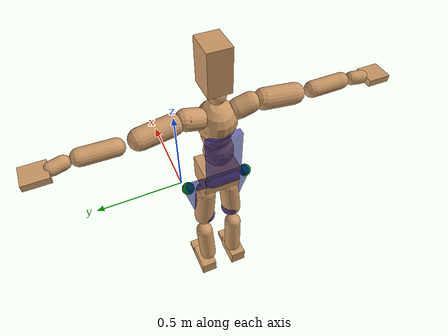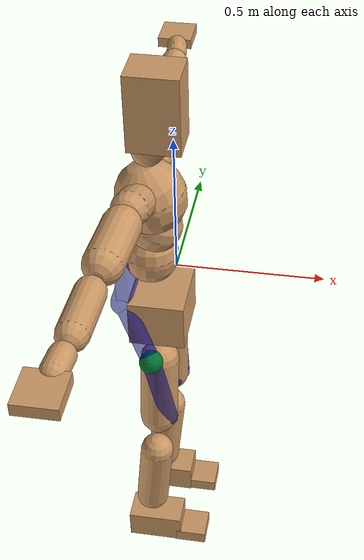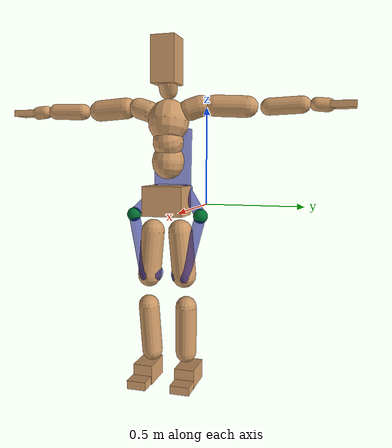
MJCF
<mujoco model="humanoid">
  <compiler coordinate="local" />
  <asset>
    <texture type="skybox" builtin="gradient" rgb1=".4 .5 .6" rgb2="0 0 0" width="100" height="100" />
    <texture builtin="flat" height="1278" mark="cross" markrgb="1 1 1" name="texgeom" random="0.01" rgb1="0.8 0.6 0.4" rgb2="0.8 0.6 0.4" type="cube" width="127" />
    <texture builtin="checker" height="100" name="texplane" rgb1="0 0 0" rgb2="0.8 0.8 0.8" type="2d" width="100" />
    <material name="MatPlane" reflectance="0.5" shininess="1" specular="1" texrepeat="60 60" texture="texplane" />
    <material name="geom" texture="texgeom" texuniform="true" />
  </asset>
  <worldbody>
    <light cutoff="100" diffuse="1 1 1" dir="-0 0 -1.3" directional="true" exponent="1" pos="0 0 1.3" specular=".1 .1 .1" />
    <body name="Pelvis" pos="-0.0018 -0.2233 0.0282">
      <geom type="box" pos="-0.0059 -0.0000 -0.0134" size="0.0897 0.1098 0.0799" quat="1.0000 0.0000 0.0000 0.0000" density="1000" conaffinity="1" condim="3" contype="7" margin="0.001" rgba="0.8 0.6 .4 1" />
      <body name="L_Hip" pos="-0.0048 0.0705 -0.0973">
        <joint name="L_Hip_x" type="hinge" pos="0 0 0" axis="1 0 0" stiffness="800" damping="80" armature="0.02" range="-180.0000 180.0000" limited="true" />
        <joint name="L_Hip_y" type="hinge" pos="0 0 0" axis="0 1 0" stiffness="800" damping="80" armature="0.02" range="-180.0000 180.0000" limited="true" />
        <joint name="L_Hip_z" type="hinge" pos="0 0 0" axis="0 0 1" stiffness="800" damping="80" armature="0.02" range="-180.0000 180.0000" limited="true" />
        <geom type="capsule" contype="1" conaffinity="1" density="2040.816327" fromto="-0.0010 0.0071 -0.0800 -0.0038 0.0281 -0.3201" size="0.0646" condim="3" margin="0.001" rgba="0.8 0.6 .4 1" />
        <body name="L_Knee" pos="-0.0033 0.0400 -0.4053">
          <joint name="L_Knee_x" type="hinge" pos="0 0 0" axis="1 0 0" stiffness="800" damping="80" armature="0.02" range="-180.0000 180.0000" limited="true" />
          <joint name="L_Knee_y" type="hinge" pos="0 0 0" axis="0 1 0" stiffness="800" damping="80" armature="0.02" range="-180.0000 180.0000" limited="true" />
          <joint name="L_Knee_z" type="hinge" pos="0 0 0" axis="0 0 1" stiffness="800" damping="80" armature="0.02" range="-180.0000 180.0000" limited="true" />
          <geom type="capsule" contype="1" conaffinity="1" density="1234.567901" fromto="-0.0093 -0.0028 -0.0877 -0.0376 -0.0114 -0.3508" size="0.0571" condim="3" margin="0.001" rgba="0.8 0.6 .4 1" />
          <body name="L_Ankle" pos="-0.0466 -0.0169 -0.4380">
            <joint name="L_Ankle_x" type="hinge" pos="0 0 0" axis="1 0 0" stiffness="800" damping="80" armature="0.02" range="-180.0000 180.0000" limited="true" />
            <joint name="L_Ankle_y" type="hinge" pos="0 0 0" axis="0 1 0" stiffness="800" damping="80" armature="0.02" range="-180.0000 180.0000" limited="true" />
            <joint name="L_Ankle_z" type="hinge" pos="0 0 0" axis="0 0 1" stiffness="800" damping="80" armature="0.02" range="-180.0000 180.0000" limited="true" />
            <geom type="box" pos="0.0262 0.0259 -0.0260" size="0.0921 0.0536 0.0505" quat="1.0000 0.0000 0.0000 0.0000" density="1000" conaffinity="1" condim="3" contype="7" margin="0.001" rgba="0.8 0.6 .4 1" />
            <body name="L_Toe" pos="0.1302 0.0308 -0.0601">
              <joint name="L_Toe_x" type="hinge" pos="0 0 0" axis="1 0 0" stiffness="500" damping="50" armature="0.02" range="-5.0000 5.0000" limited="true" />
              <joint name="L_Toe_y" type="hinge" pos="0 0 0" axis="0 1 0" stiffness="500" damping="50" armature="0.02" range="-5.0000 5.0000" limited="true" />
              <joint name="L_Toe_z" type="hinge" pos="0 0 0" axis="0 0 1" stiffness="500" damping="50" armature="0.02" range="-5.0000 5.0000" limited="true" />
              <geom type="box" pos="0.0268 -0.0032 0.0061" size="0.0536 0.0517 0.0220" quat="1.0000 0.0000 0.0000 0.0000" density="1000" conaffinity="1" condim="3" contype="7" margin="0.001" rgba="0.8 0.6 .4 1" />
            </body>
          </body>
        </body>
        <geom name="left_hip_motor" type="sphere" size="0.0385" pos="-0.000469 0.118289 0.005255" mass="0.53" contype="0" conaffinity="0" rgba="0.0 0.45 0.2 1" />
        <geom name="left_thigh_box" type="capsule" fromto="0.002551 0.111331 -0.023770 0.033895 0.039115 -0.325029" size="0.030" mass="0.1977" contype="0" conaffinity="0" rgba="0.0 0.0 0.55 0.55" />
        <geom name="left_hip_ring" type="sphere" pos="-0.007284 0.017379 -0.315218" size="0.061500" mass="0.0923" contype="0" conaffinity="0" rgba="0.0 0.0 0.55 0.55" />
      </body>
      <body name="R_Hip" pos="-0.0030 -0.0690 -0.0961">
        <joint name="R_Hip_x" type="hinge" pos="0 0 0" axis="1 0 0" stiffness="800" damping="80" armature="0.02" range="-180.0000 180.0000" limited="true" />
        <joint name="R_Hip_y" type="hinge" pos="0 0 0" axis="0 1 0" stiffness="800" damping="80" armature="0.02" range="-180.0000 180.0000" limited="true" />
        <joint name="R_Hip_z" type="hinge" pos="0 0 0" axis="0 0 1" stiffness="800" damping="80" armature="0.02" range="-180.0000 180.0000" limited="true" />
        <geom type="capsule" contype="1" conaffinity="1" density="2040.816327" fromto="-0.0019 -0.0079 -0.0823 -0.0075 -0.0312 -0.3291" size="0.0632" condim="3" margin="0.001" rgba="0.8 0.6 .4 1" />
        <body name="R_Knee" pos="-0.0100 -0.0431 -0.4147">
          <joint name="R_Knee_x" type="hinge" pos="0 0 0" axis="1 0 0" stiffness="800" damping="80" armature="0.02" range="-180.0000 180.0000" limited="true" />
          <joint name="R_Knee_y" type="hinge" pos="0 0 0" axis="0 1 0" stiffness="800" damping="80" armature="0.02" range="-180.0000 180.0000" limited="true" />
          <joint name="R_Knee_z" type="hinge" pos="0 0 0" axis="0 0 1" stiffness="800" damping="80" armature="0.02" range="-180.0000 180.0000" limited="true" />
          <geom type="capsule" contype="1" conaffinity="1" density="1234.567901" fromto="-0.0090 0.0034 -0.0879 -0.0359 0.0132 -0.3515" size="0.0569" condim="3" margin="0.001" rgba="0.8 0.6 .4 1" />
          <body name="R_Ankle" pos="-0.0453 0.0188 -0.4391">
            <joint name="R_Ankle_x" type="hinge" pos="0 0 0" axis="1 0 0" stiffness="800" damping="80" armature="0.02" range="-180.0000 180.0000" limited="true" />
            <joint name="R_Ankle_y" type="hinge" pos="0 0 0" axis="0 1 0" stiffness="800" damping="80" armature="0.02" range="-180.0000 180.0000" limited="true" />
            <joint name="R_Ankle_z" type="hinge" pos="0 0 0" axis="0 0 1" stiffness="800" damping="80" armature="0.02" range="-180.0000 180.0000" limited="true" />
            <geom type="box" pos="0.0279 -0.0234 -0.0191" size="0.0941 0.0533 0.0526" quat="1.0000 0.0000 0.0000 0.0000" density="1000" conaffinity="1" condim="3" contype="7" margin="0.001" rgba="0.8 0.6 .4 1" />
            <body name="R_Toe" pos="0.1351 -0.0319 -0.0528">
              <joint name="R_Toe_x" type="hinge" pos="0 0 0" axis="1 0 0" stiffness="500" damping="50" armature="0.02" range="-5.0000 5.0000" limited="true" />
              <joint name="R_Toe_y" type="hinge" pos="0 0 0" axis="0 1 0" stiffness="500" damping="50" armature="0.02" range="-5.0000 5.0000" limited="true" />
              <joint name="R_Toe_z" type="hinge" pos="0 0 0" axis="0 0 1" stiffness="500" damping="50" armature="0.02" range="-5.0000 5.0000" limited="true" />
              <geom type="box" pos="0.0247 0.0046 0.0048" size="0.0536 0.0521 0.0228" quat="1.0000 0.0000 0.0000 0.0000" density="1000" conaffinity="1" condim="3" contype="7" margin="0.001" rgba="0.8 0.6 .4 1" />
            </body>
          </body>
        </body>
        <geom name="right_hip_motor" type="sphere" size="0.0385" pos="-0.005199 -0.119211 0.003827" mass="0.53" contype="0" conaffinity="0" rgba="0.0 0.45 0.2 1" />
        <geom name="right_thigh_box" type="capsule" fromto="-0.002132 -0.112377 -0.025223 0.029619 -0.041620 -0.325993" size="0.030" mass="0.1977" contype="0" conaffinity="0" rgba="0.0 0.0 0.55 0.55" />
        <geom name="right_hip_ring" type="sphere" pos="-0.013104 -0.018825 -0.316393" size="0.060600" mass="0.0923" contype="0" conaffinity="0" rgba="0.0 0.0 0.55 0.55" />
      </body>
      <body name="Torso" pos="-0.0348 -0.0027 0.1205">
        <joint name="Torso_x" type="hinge" pos="0 0 0" axis="1 0 0" stiffness="1000" damping="100" armature="0.02" range="-180.0000 180.0000" limited="true" />
        <joint name="Torso_y" type="hinge" pos="0 0 0" axis="0 1 0" stiffness="1000" damping="100" armature="0.02" range="-180.0000 180.0000" limited="true" />
        <joint name="Torso_z" type="hinge" pos="0 0 0" axis="0 0 1" stiffness="1000" damping="100" armature="0.02" range="-180.0000 180.0000" limited="true" />
        <geom type="capsule" contype="1" conaffinity="1" density="2040.816327" fromto="0.0006 0.0028 0.0677 0.0007 0.0034 0.0828" size="0.0866" condim="3" margin="0.001" rgba="0.8 0.6 .4 1" />
        <body name="Spine" pos="0.0036 0.0078 0.1480">
          <joint name="Spine_x" type="hinge" pos="0 0 0" axis="1 0 0" stiffness="1000" damping="100" armature="0.02" range="-180.0000 180.0000" limited="true" />
          <joint name="Spine_y" type="hinge" pos="0 0 0" axis="0 1 0" stiffness="1000" damping="100" armature="0.02" range="-180.0000 180.0000" limited="true" />
          <joint name="Spine_z" type="hinge" pos="0 0 0" axis="0 0 1" stiffness="1000" damping="100" armature="0.02" range="-180.0000 180.0000" limited="true" />
          <geom type="capsule" contype="1" conaffinity="1" density="2040.816327" fromto="0.0127 0.0008 0.0267 0.0156 0.0009 0.0327" size="0.0825" condim="3" margin="0.001" rgba="0.8 0.6 .4 1" />
          <body name="Chest" pos="0.0242 0.0007 0.0594">
            <joint name="Chest_x" type="hinge" pos="0 0 0" axis="1 0 0" stiffness="1000" damping="100" armature="0.02" range="-180.0000 180.0000" limited="true" />
            <joint name="Chest_y" type="hinge" pos="0 0 0" axis="0 1 0" stiffness="1000" damping="100" armature="0.02" range="-180.0000 180.0000" limited="true" />
            <joint name="Chest_z" type="hinge" pos="0 0 0" axis="0 0 1" stiffness="1000" damping="100" armature="0.02" range="-180.0000 180.0000" limited="true" />
            <geom type="capsule" contype="1" conaffinity="1" density="2040.816327" fromto="-0.0183 -0.0010 0.0742 -0.0224 -0.0011 0.0907" size="0.1095" condim="3" margin="0.001" rgba="0.8 0.6 .4 1" />
            <body name="Neck" pos="-0.0361 -0.0036 0.2311">
              <joint name="Neck_x" type="hinge" pos="0 0 0" axis="1 0 0" stiffness="500" damping="50" armature="0.02" range="-180.0000 180.0000" limited="true" />
              <joint name="Neck_y" type="hinge" pos="0 0 0" axis="0 1 0" stiffness="500" damping="50" armature="0.02" range="-180.0000 180.0000" limited="true" />
              <joint name="Neck_z" type="hinge" pos="0 0 0" axis="0 0 1" stiffness="500" damping="50" armature="0.02" range="-180.0000 180.0000" limited="true" />
              <geom type="capsule" contype="1" conaffinity="1" density="1000" fromto="0.0115 0.0011 0.0138 0.0461 0.0045 0.0550" size="0.0489" condim="3" margin="0.001" rgba="0.8 0.6 .4 1" />
              <body name="Head" pos="0.0547 0.0070 0.0701">
                <joint name="Head_x" type="hinge" pos="0 0 0" axis="1 0 0" stiffness="500" damping="50" armature="0.02" range="-180.0000 180.0000" limited="true" />
                <joint name="Head_y" type="hinge" pos="0 0 0" axis="0 1 0" stiffness="500" damping="50" armature="0.02" range="-180.0000 180.0000" limited="true" />
                <joint name="Head_z" type="hinge" pos="0 0 0" axis="0 0 1" stiffness="500" damping="50" armature="0.02" range="-180.0000 180.0000" limited="true" />
                <geom type="box" pos="-0.0123 -0.0045 0.0926" size="0.0805 0.0647 0.1219" quat="1.0000 0.0000 0.0000 0.0000" density="1000" conaffinity="1" condim="3" contype="7" margin="0.001" rgba="0.8 0.6 .4 1" />
              </body>
            </body>
            <body name="L_Thorax" pos="-0.0323 0.0864 0.1321">
              <joint name="L_Thorax_x" type="hinge" pos="0 0 0" axis="1 0 0" stiffness="500" damping="50" armature="0.02" range="-180.0000 180.0000" limited="true" />
              <joint name="L_Thorax_y" type="hinge" pos="0 0 0" axis="0 1 0" stiffness="500" damping="50" armature="0.02" range="-180.0000 180.0000" limited="true" />
              <joint name="L_Thorax_z" type="hinge" pos="0 0 0" axis="0 0 1" stiffness="500" damping="50" armature="0.02" range="-180.0000 180.0000" limited="true" />
              <geom type="capsule" contype="1" conaffinity="1" density="1000" fromto="-0.0020 0.0210 0.0068 -0.0079 0.0842 0.0273" size="0.0578" condim="3" margin="0.001" rgba="0.8 0.6 .4 1" />
              <body name="L_Shoulder" pos="-0.0114 0.1004 0.0306">
                <joint name="L_Shoulder_x" type="hinge" pos="0 0 0" axis="1 0 0" stiffness="500" damping="50" armature="0.02" range="-180.0000 180.0000" limited="true" />
                <joint name="L_Shoulder_y" type="hinge" pos="0 0 0" axis="0 1 0" stiffness="500" damping="50" armature="0.02" range="-180.0000 180.0000" limited="true" />
                <joint name="L_Shoulder_z" type="hinge" pos="0 0 0" axis="0 0 1" stiffness="500" damping="50" armature="0.02" range="-180.0000 180.0000" limited="true" />
                <geom type="capsule" contype="1" conaffinity="1" density="1000" fromto="-0.0062 0.0564 -0.0029 -0.0250 0.2256 -0.0112" size="0.0569" condim="3" margin="0.001" rgba="0.8 0.6 .4 1" />
                <body name="L_Elbow" pos="-0.0294 0.2823 -0.0157">
                  <joint name="L_Elbow_x" type="hinge" pos="0 0 0" axis="1 0 0" stiffness="500" damping="50" armature="0.02" range="-180.0000 180.0000" limited="true" />
                  <joint name="L_Elbow_y" type="hinge" pos="0 0 0" axis="0 1 0" stiffness="500" damping="50" armature="0.02" range="-180.0000 180.0000" limited="true" />
                  <joint name="L_Elbow_z" type="hinge" pos="0 0 0" axis="0 0 1" stiffness="500" damping="50" armature="0.02" range="-180.0000 180.0000" limited="true" />
                  <geom type="capsule" contype="1" conaffinity="1" density="1000" fromto="-0.0002 0.0551 0.0020 -0.0010 0.2207 0.0079" size="0.0446" condim="3" margin="0.001" rgba="0.8 0.6 .4 1" />
                  <body name="L_Wrist" pos="-0.0020 0.2746 0.0101">
                    <joint name="L_Wrist_x" type="hinge" pos="0 0 0" axis="1 0 0" stiffness="300" damping="30" armature="0.02" range="-180.0000 180.0000" limited="true" />
                    <joint name="L_Wrist_y" type="hinge" pos="0 0 0" axis="0 1 0" stiffness="300" damping="30" armature="0.02" range="-180.0000 180.0000" limited="true" />
                    <joint name="L_Wrist_z" type="hinge" pos="0 0 0" axis="0 0 1" stiffness="300" damping="30" armature="0.02" range="-180.0000 180.0000" limited="true" />
                    <geom type="capsule" contype="1" conaffinity="1" density="1000" fromto="-0.0034 0.0184 -0.0017 -0.0134 0.0736 -0.0071" size="0.0351" condim="3" margin="0.001" rgba="0.8 0.6 .4 1" />
                    <body name="L_Hand" pos="-0.0177 0.0928 -0.0067">
                      <joint name="L_Hand_x" type="hinge" pos="0 0 0" axis="1 0 0" stiffness="300" damping="30" armature="0.02" range="-5.0000 5.0000" limited="true" />
                      <joint name="L_Hand_y" type="hinge" pos="0 0 0" axis="0 1 0" stiffness="300" damping="30" armature="0.02" range="-5.0000 5.0000" limited="true" />
                      <joint name="L_Hand_z" type="hinge" pos="0 0 0" axis="0 0 1" stiffness="300" damping="30" armature="0.02" range="-5.0000 5.0000" limited="true" />
                      <geom type="box" pos="-0.0064 0.0533 0.0011" size="0.0590 0.0633 0.0171" quat="1.0000 0.0000 0.0000 0.0000" density="1000" conaffinity="1" condim="3" contype="7" margin="0.001" rgba="0.8 0.6 .4 1" />
                    </body>
                  </body>
                </body>
              </body>
            </body>
            <body name="R_Thorax" pos="-0.0365 -0.0906 0.1281">
              <joint name="R_Thorax_x" type="hinge" pos="0 0 0" axis="1 0 0" stiffness="500" damping="50" armature="0.02" range="-180.0000 180.0000" limited="true" />
              <joint name="R_Thorax_y" type="hinge" pos="0 0 0" axis="0 1 0" stiffness="500" damping="50" armature="0.02" range="-180.0000 180.0000" limited="true" />
              <joint name="R_Thorax_z" type="hinge" pos="0 0 0" axis="0 0 1" stiffness="500" damping="50" armature="0.02" range="-180.0000 180.0000" limited="true" />
              <geom type="capsule" contype="1" conaffinity="1" density="1000" fromto="-0.0020 -0.0215 0.0073 -0.0080 -0.0860 0.0292" size="0.0560" condim="3" margin="0.001" rgba="0.8 0.6 .4 1" />
              <body name="R_Shoulder" pos="-0.0085 -0.1071 0.0340">
                <joint name="R_Shoulder_x" type="hinge" pos="0 0 0" axis="1 0 0" stiffness="500" damping="50" armature="0.02" range="-180.0000 180.0000" limited="true" />
                <joint name="R_Shoulder_y" type="hinge" pos="0 0 0" axis="0 1 0" stiffness="500" damping="50" armature="0.02" range="-180.0000 180.0000" limited="true" />
                <joint name="R_Shoulder_z" type="hinge" pos="0 0 0" axis="0 0 1" stiffness="500" damping="50" armature="0.02" range="-180.0000 180.0000" limited="true" />
                <geom type="capsule" contype="1" conaffinity="1" density="1000" fromto="-0.0048 -0.0553 -0.0030 -0.0191 -0.2214 -0.0118" size="0.0583" condim="3" margin="0.001" rgba="0.8 0.6 .4 1" />
                <body name="R_Elbow" pos="-0.0249 -0.2760 -0.0154">
                  <joint name="R_Elbow_x" type="hinge" pos="0 0 0" axis="1 0 0" stiffness="500" damping="50" armature="0.02" range="-180.0000 180.0000" limited="true" />
                  <joint name="R_Elbow_y" type="hinge" pos="0 0 0" axis="0 1 0" stiffness="500" damping="50" armature="0.02" range="-180.0000 180.0000" limited="true" />
                  <joint name="R_Elbow_z" type="hinge" pos="0 0 0" axis="0 0 1" stiffness="500" damping="50" armature="0.02" range="-180.0000 180.0000" limited="true" />
                  <geom type="capsule" contype="1" conaffinity="1" density="1000" fromto="-0.0012 -0.0563 0.0018 -0.0049 -0.2248 0.0068" size="0.0452" condim="3" margin="0.001" rgba="0.8 0.6 .4 1" />
                  <body name="R_Wrist" pos="-0.0079 -0.2795 0.0077">
                    <joint name="R_Wrist_x" type="hinge" pos="0 0 0" axis="1 0 0" stiffness="300" damping="30" armature="0.02" range="-180.0000 180.0000" limited="true" />
                    <joint name="R_Wrist_y" type="hinge" pos="0 0 0" axis="0 1 0" stiffness="300" damping="30" armature="0.02" range="-180.0000 180.0000" limited="true" />
                    <joint name="R_Wrist_z" type="hinge" pos="0 0 0" axis="0 0 1" stiffness="300" damping="30" armature="0.02" range="-180.0000 180.0000" limited="true" />
                    <geom type="capsule" contype="1" conaffinity="1" density="1000" fromto="-0.0024 -0.0182 -0.0013 -0.0094 -0.0730 -0.0052" size="0.0366" condim="3" margin="0.001" rgba="0.8 0.6 .4 1" />
                    <body name="R_Hand" pos="-0.0107 -0.0933 -0.0050">
                      <joint name="R_Hand_x" type="hinge" pos="0 0 0" axis="1 0 0" stiffness="300" damping="30" armature="0.02" range="-5.0000 5.0000" limited="true" />
                      <joint name="R_Hand_y" type="hinge" pos="0 0 0" axis="0 1 0" stiffness="300" damping="30" armature="0.02" range="-5.0000 5.0000" limited="true" />
                      <joint name="R_Hand_z" type="hinge" pos="0 0 0" axis="0 0 1" stiffness="300" damping="30" armature="0.02" range="-5.0000 5.0000" limited="true" />
                      <geom type="box" pos="-0.0087 -0.0501 -0.0010" size="0.0600 0.0617 0.0180" quat="1.0000 0.0000 0.0000 0.0000" density="1000" conaffinity="1" condim="3" contype="7" margin="0.001" rgba="0.8 0.6 .4 1" />
                    </body>
                  </body>
                </body>
              </body>
            </body>
          </body>
        </body>
      </body>
      <joint type="free" name="Pelvis" limited="false" actuatorfrclimited="false" />
      <geom name="waist_hip_bar" type="capsule" fromto="-0.1166 -0.074 0.0436 -0.1166 0.074 0.0436" size="0.040" mass="0.9389" contype="0" conaffinity="0" rgba="0.0 0.0 0.55 0.55" />
      <geom name="waist_hip_arm_l" type="capsule" fromto="-0.007269 0.187789 -0.086145 -0.116600 0.074000 0.043600" size="0.030" mass="0.3756" contype="0" conaffinity="0" rgba="0.0 0.0 0.55 0.55" />
      <geom name="waist_hip_arm_r" type="capsule" fromto="-0.009499 -0.186911 -0.086673 -0.116600 -0.074000 0.043600" size="0.030" mass="0.3756" contype="0" conaffinity="0" rgba="0.0 0.0 0.55 0.55" />
      <geom name="exo_main_col" type="box" size="0.020000 0.100000 0.160452" pos="-0.114674 0.002139 0.212481" quat="0.99987008 -0.00439565 -0.01550794 -0.00006818" mass="1.37" contype="0" conaffinity="0" rgba="0.0 0.0 0.55 0.55" />
    </body>
  </worldbody>
  <actuator>
    <motor name="L_Hip_x" joint="L_Hip_x" gear="500" />
    <motor name="L_Hip_y" joint="L_Hip_y" gear="500" />
    <motor name="L_Hip_z" joint="L_Hip_z" gear="500" />
    <motor name="L_Knee_x" joint="L_Knee_x" gear="500" />
    <motor name="L_Knee_y" joint="L_Knee_y" gear="500" />
    <motor name="L_Knee_z" joint="L_Knee_z" gear="500" />
    <motor name="L_Ankle_x" joint="L_Ankle_x" gear="500" />
    <motor name="L_Ankle_y" joint="L_Ankle_y" gear="500" />
    <motor name="L_Ankle_z" joint="L_Ankle_z" gear="500" />
    <motor name="L_Toe_x" joint="L_Toe_x" gear="500" />
    <motor name="L_Toe_y" joint="L_Toe_y" gear="500" />
    <motor name="L_Toe_z" joint="L_Toe_z" gear="500" />
    <motor name="R_Hip_x" joint="R_Hip_x" gear="500" />
    <motor name="R_Hip_y" joint="R_Hip_y" gear="500" />
    <motor name="R_Hip_z" joint="R_Hip_z" gear="500" />
    <motor name="R_Knee_x" joint="R_Knee_x" gear="500" />
    <motor name="R_Knee_y" joint="R_Knee_y" gear="500" />
    <motor name="R_Knee_z" joint="R_Knee_z" gear="500" />
    <motor name="R_Ankle_x" joint="R_Ankle_x" gear="500" />
    <motor name="R_Ankle_y" joint="R_Ankle_y" gear="500" />
    <motor name="R_Ankle_z" joint="R_Ankle_z" gear="500" />
    <motor name="R_Toe_x" joint="R_Toe_x" gear="500" />
    <motor name="R_Toe_y" joint="R_Toe_y" gear="500" />
    <motor name="R_Toe_z" joint="R_Toe_z" gear="500" />
    <motor name="Torso_x" joint="Torso_x" gear="500" />
    <motor name="Torso_y" joint="Torso_y" gear="500" />
    <motor name="Torso_z" joint="Torso_z" gear="500" />
    <motor name="Spine_x" joint="Spine_x" gear="500" />
    <motor name="Spine_y" joint="Spine_y" gear="500" />
    <motor name="Spine_z" joint="Spine_z" gear="500" />
    <motor name="Chest_x" joint="Chest_x" gear="500" />
    <motor name="Chest_y" joint="Chest_y" gear="500" />
    <motor name="Chest_z" joint="Chest_z" gear="500" />
    <motor name="Neck_x" joint="Neck_x" gear="500" />
    <motor name="Neck_y" joint="Neck_y" gear="500" />
    <motor name="Neck_z" joint="Neck_z" gear="500" />
    <motor name="Head_x" joint="Head_x" gear="500" />
    <motor name="Head_y" joint="Head_y" gear="500" />
    <motor name="Head_z" joint="Head_z" gear="500" />
    <motor name="L_Thorax_x" joint="L_Thorax_x" gear="500" />
    <motor name="L_Thorax_y" joint="L_Thorax_y" gear="500" />
    <motor name="L_Thorax_z" joint="L_Thorax_z" gear="500" />
    <motor name="L_Shoulder_x" joint="L_Shoulder_x" gear="500" />
    <motor name="L_Shoulder_y" joint="L_Shoulder_y" gear="500" />
    <motor name="L_Shoulder_z" joint="L_Shoulder_z" gear="500" />
    <motor name="L_Elbow_x" joint="L_Elbow_x" gear="500" />
    <motor name="L_Elbow_y" joint="L_Elbow_y" gear="500" />
    <motor name="L_Elbow_z" joint="L_Elbow_z" gear="500" />
    <motor name="L_Wrist_x" joint="L_Wrist_x" gear="500" />
    <motor name="L_Wrist_y" joint="L_Wrist_y" gear="500" />
    <motor name="L_Wrist_z" joint="L_Wrist_z" gear="500" />
    <motor name="L_Hand_x" joint="L_Hand_x" gear="500" />
    <motor name="L_Hand_y" joint="L_Hand_y" gear="500" />
    <motor name="L_Hand_z" joint="L_Hand_z" gear="500" />
    <motor name="R_Thorax_x" joint="R_Thorax_x" gear="500" />
    <motor name="R_Thorax_y" joint="R_Thorax_y" gear="500" />
    <motor name="R_Thorax_z" joint="R_Thorax_z" gear="500" />
    <motor name="R_Shoulder_x" joint="R_Shoulder_x" gear="500" />
    <motor name="R_Shoulder_y" joint="R_Shoulder_y" gear="500" />
    <motor name="R_Shoulder_z" joint="R_Shoulder_z" gear="500" />
    <motor name="R_Elbow_x" joint="R_Elbow_x" gear="500" />
    <motor name="R_Elbow_y" joint="R_Elbow_y" gear="500" />
    <motor name="R_Elbow_z" joint="R_Elbow_z" gear="500" />
    <motor name="R_Wrist_x" joint="R_Wrist_x" gear="500" />
    <motor name="R_Wrist_y" joint="R_Wrist_y" gear="500" />
    <motor name="R_Wrist_z" joint="R_Wrist_z" gear="500" />
    <motor name="R_Hand_x" joint="R_Hand_x" gear="500" />
    <motor name="R_Hand_y" joint="R_Hand_y" gear="500" />
    <motor name="R_Hand_z" joint="R_Hand_z" gear="500" />
    <motor name="exo_hip_l" joint="L_Hip_y" gear="23.7" ctrllimited="true" ctrlrange="-1 1" />
    <motor name="exo_hip_r" joint="R_Hip_y" gear="23.7" ctrllimited="true" ctrlrange="-1 1" />
  </actuator>
  <contact>
    <exclude body1="Torso" body2="Chest" />
    <exclude body1="Head" body2="Chest" />
    <exclude body1="R_Knee" body2="R_Toe" />
    <exclude body1="R_Knee" body2="L_Ankle" />
    <exclude body1="R_Knee" body2="L_Toe" />
    <exclude body1="L_Knee" body2="L_Toe" />
    <exclude body1="L_Knee" body2="R_Ankle" />
    <exclude body1="L_Knee" body2="R_Toe" />
    <exclude body1="L_Shoulder" body2="Chest" />
    <exclude body1="R_Shoulder" body2="Chest" />
  </contact>
  <sensor />
  <size njmax="700" nconmax="700" />
</mujoco>
